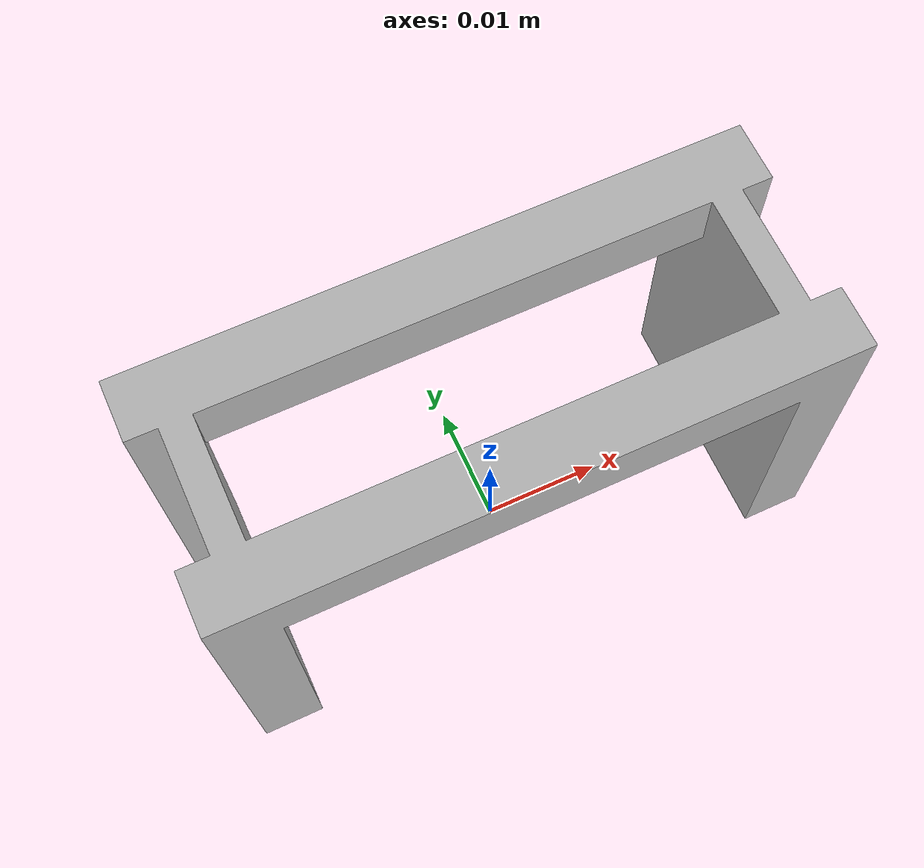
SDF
<?xml version="1.0" ?>
<sdf version="1.5">
  <model name="block_for_arm">
    <static>0</static>
    <link name="link">
      <inertial>
        <mass>0.01</mass>
        <pose> 0 0 0.015 0 0</pose>
        <inertia>
          <ixx>0.01227</ixx>
          <ixy>0.0</ixy>
          <ixz>0.0</ixz>
          <iyy>0.03799</iyy>
          <iyz>0.0</iyz>
          <izz>0.03551</izz>
        </inertia>
      </inertial>
      <collision name="collision">
        <geometry>
          <mesh>
             <scale>0.001 0.001 0.001</scale>
             <uri>model://block_for_arm/meshes/block.stl</uri>
           </mesh>
        </geometry>
        <surface>
        <friction>
          <ode>
            <mu>1</mu>
            <mu2>1</mu2>
          </ode>
        </friction>
      </surface>
      </collision>
      <visual name="visual">
         <geometry>
           <mesh>
             <scale>0.001 0.001 0.001</scale>
             <uri>model://block_for_arm/meshes/block.stl</uri>
           </mesh>
         </geometry>
       </visual>
    </link>
  </model>
</sdf>
